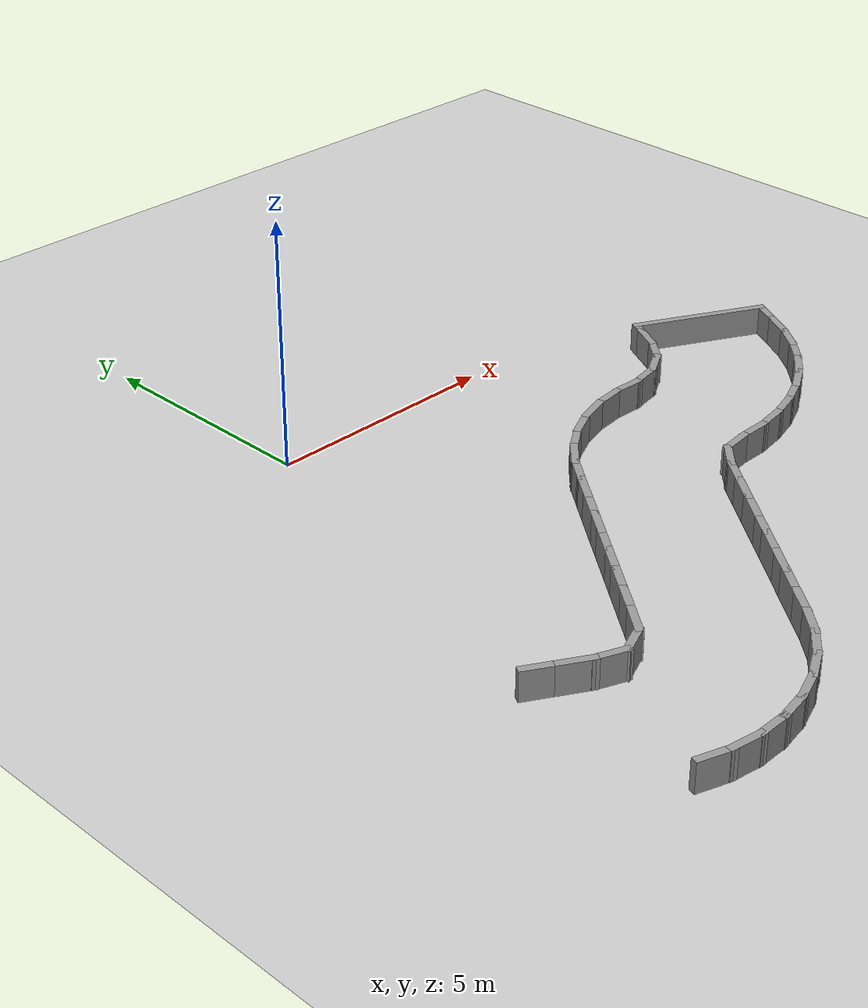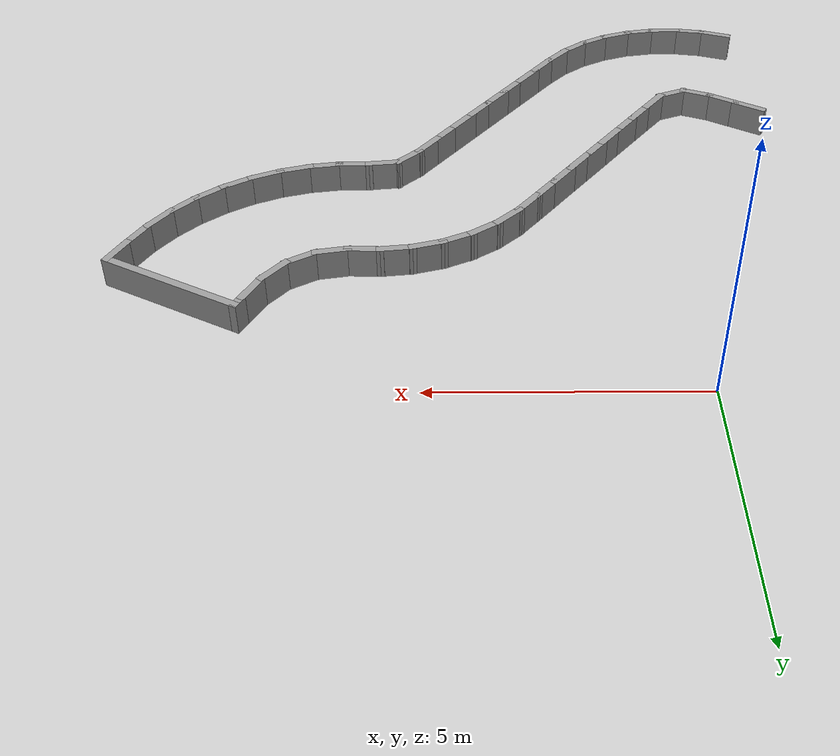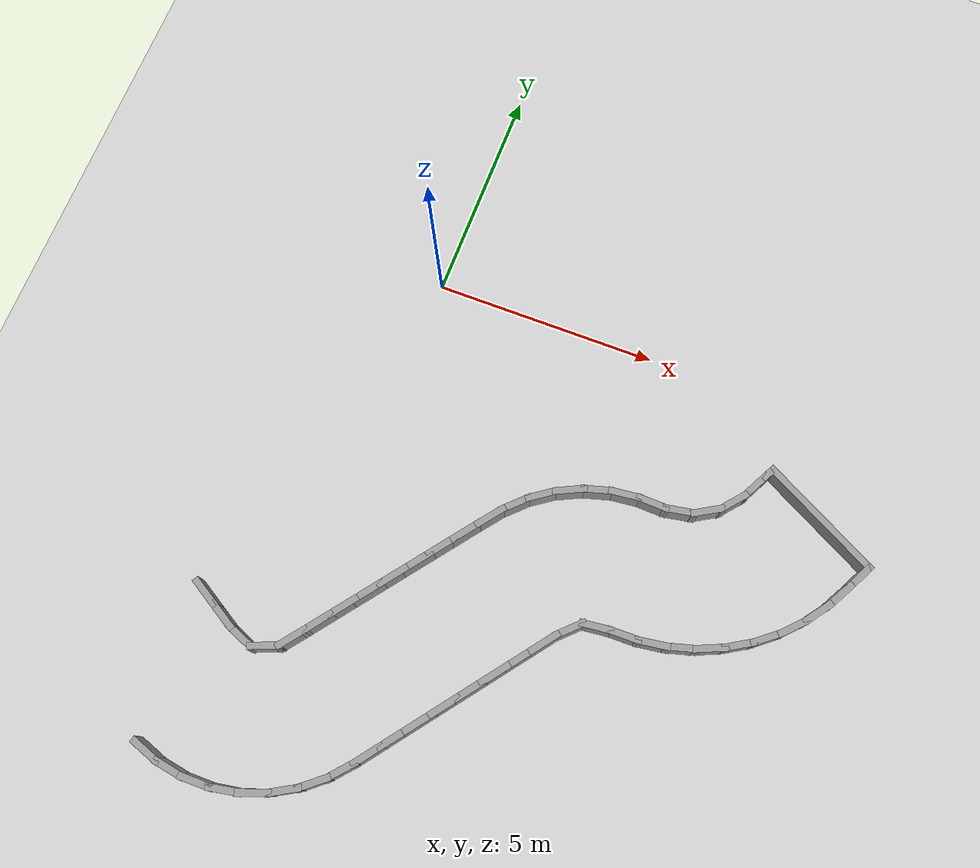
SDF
<sdf version="1.7">
 <world name="default">
  <model name="ground_plane">
   <static>1</static>
   <link name="link">
    <collision name="collision">
     <geometry><plane><normal>0 0 1</normal><size>100 100</size></plane></geometry>
     <surface><friction><ode><mu>100</mu><mu2>50</mu2></ode></friction></surface>
    </collision>
    <visual name="visual">
     <cast_shadows>0</cast_shadows>
     <geometry><plane><normal>0 0 1</normal><size>100 100</size></plane></geometry>
     <material>
      <script><uri>file://media/materials/scripts/gazebo.material</uri><name>Gazebo/Grey</name></script>
     </material>
    </visual>
   </link>
  </model>
  <model name="rand_turn_05">
   <link name="Wall_25">
    <collision name="Wall_25_Collision">
     <geometry><box><size>0.7500 0.1500 0.6000</size></box></geometry>
     <pose>0 0 0.3000 0 -0 0</pose>
    </collision>
    <visual name="Wall_25_Visual">
     <pose>0 0 0.3000 0 -0 0</pose>
     <geometry><box><size>0.7500 0.1500 0.6000</size></box></geometry>
     <material>
      <script><uri>file://media/materials/scripts/gazebo.material</uri><name>Gazebo/Grey</name></script>
      <ambient>1 1 1 1</ambient>
     </material>
    </visual>
    <pose>-1.9916 -8.2777 0 0 -0 -0.53224</pose>
   </link>
   <link name="Wall_26">
    <collision name="Wall_26_Collision">
     <geometry><box><size>0.7500 0.1500 0.6000</size></box></geometry>
     <pose>0 0 0.3000 0 -0 0</pose>
    </collision>
    <visual name="Wall_26_Visual">
     <pose>0 0 0.3000 0 -0 0</pose>
     <geometry><box><size>0.7500 0.1500 0.6000</size></box></geometry>
     <material>
      <script><uri>file://media/materials/scripts/gazebo.material</uri><name>Gazebo/Grey</name></script>
      <ambient>1 1 1 1</ambient>
     </material>
    </visual>
    <pose>-1.4746 -8.5822 0 0 -0 -0.53224</pose>
   </link>
   <link name="Wall_27">
    <collision name="Wall_27_Collision">
     <geometry><box><size>0.7416 0.1500 0.6000</size></box></geometry>
     <pose>0 0 0.3000 0 -0 0</pose>
    </collision>
    <visual name="Wall_27_Visual">
     <pose>0 0 0.3000 0 -0 0</pose>
     <geometry><box><size>0.7416 0.1500 0.6000</size></box></geometry>
     <material>
      <script><uri>file://media/materials/scripts/gazebo.material</uri><name>Gazebo/Grey</name></script>
      <ambient>1 1 1 1</ambient>
     </material>
    </visual>
    <pose>-0.9412 -8.8438 0 0 -0 -0.37850</pose>
   </link>
   <link name="Wall_28">
    <collision name="Wall_28_Collision">
     <geometry><box><size>0.7329 0.1500 0.6000</size></box></geometry>
     <pose>0 0 0.3000 0 -0 0</pose>
    </collision>
    <visual name="Wall_28_Visual">
     <pose>0 0 0.3000 0 -0 0</pose>
     <geometry><box><size>0.7329 0.1500 0.6000</size></box></geometry>
     <material>
      <script><uri>file://media/materials/scripts/gazebo.material</uri><name>Gazebo/Grey</name></script>
      <ambient>1 1 1 1</ambient>
     </material>
    </visual>
    <pose>-0.3967 -8.8427 0 0 -0 0.38835</pose>
   </link>
   <link name="Wall_29">
    <collision name="Wall_29_Collision">
     <geometry><box><size>0.7498 0.1500 0.6000</size></box></geometry>
     <pose>0 0 0.3000 0 -0 0</pose>
    </collision>
    <visual name="Wall_29_Visual">
     <pose>0 0 0.3000 0 -0 0</pose>
     <geometry><box><size>0.7498 0.1500 0.6000</size></box></geometry>
     <material>
      <script><uri>file://media/materials/scripts/gazebo.material</uri><name>Gazebo/Grey</name></script>
      <ambient>1 1 1 1</ambient>
     </material>
    </visual>
    <pose>0.0571 -8.4955 0 0 -0 0.91026</pose>
   </link>
   <link name="Wall_30">
    <collision name="Wall_30_Collision">
     <geometry><box><size>0.7500 0.1500 0.6000</size></box></geometry>
     <pose>0 0 0.3000 0 -0 0</pose>
    </collision>
    <visual name="Wall_30_Visual">
     <pose>0 0 0.3000 0 -0 0</pose>
     <geometry><box><size>0.7500 0.1500 0.6000</size></box></geometry>
     <material>
      <script><uri>file://media/materials/scripts/gazebo.material</uri><name>Gazebo/Grey</name></script>
      <ambient>1 1 1 1</ambient>
     </material>
    </visual>
    <pose>0.4232 -8.0203 0 0 -0 0.91858</pose>
   </link>
   <link name="Wall_31">
    <collision name="Wall_31_Collision">
     <geometry><box><size>0.7500 0.1500 0.6000</size></box></geometry>
     <pose>0 0 0.3000 0 -0 0</pose>
    </collision>
    <visual name="Wall_31_Visual">
     <pose>0 0 0.3000 0 -0 0</pose>
     <geometry><box><size>0.7500 0.1500 0.6000</size></box></geometry>
     <material>
      <script><uri>file://media/materials/scripts/gazebo.material</uri><name>Gazebo/Grey</name></script>
      <ambient>1 1 1 1</ambient>
     </material>
    </visual>
    <pose>0.7873 -7.5434 0 0 -0 0.91858</pose>
   </link>
   <link name="Wall_32">
    <collision name="Wall_32_Collision">
     <geometry><box><size>0.7500 0.1500 0.6000</size></box></geometry>
     <pose>0 0 0.3000 0 -0 0</pose>
    </collision>
    <visual name="Wall_32_Visual">
     <pose>0 0 0.3000 0 -0 0</pose>
     <geometry><box><size>0.7500 0.1500 0.6000</size></box></geometry>
     <material>
      <script><uri>file://media/materials/scripts/gazebo.material</uri><name>Gazebo/Grey</name></script>
      <ambient>1 1 1 1</ambient>
     </material>
    </visual>
    <pose>1.1515 -7.0666 0 0 -0 0.91858</pose>
   </link>
   <link name="Wall_33">
    <collision name="Wall_33_Collision">
     <geometry><box><size>0.7500 0.1500 0.6000</size></box></geometry>
     <pose>0 0 0.3000 0 -0 0</pose>
    </collision>
    <visual name="Wall_33_Visual">
     <pose>0 0 0.3000 0 -0 0</pose>
     <geometry><box><size>0.7500 0.1500 0.6000</size></box></geometry>
     <material>
      <script><uri>file://media/materials/scripts/gazebo.material</uri><name>Gazebo/Grey</name></script>
      <ambient>1 1 1 1</ambient>
     </material>
    </visual>
    <pose>1.5157 -6.5897 0 0 -0 0.91858</pose>
   </link>
   <link name="Wall_34">
    <collision name="Wall_34_Collision">
     <geometry><box><size>0.7500 0.1500 0.6000</size></box></geometry>
     <pose>0 0 0.3000 0 -0 0</pose>
    </collision>
    <visual name="Wall_34_Visual">
     <pose>0 0 0.3000 0 -0 0</pose>
     <geometry><box><size>0.7500 0.1500 0.6000</size></box></geometry>
     <material>
      <script><uri>file://media/materials/scripts/gazebo.material</uri><name>Gazebo/Grey</name></script>
      <ambient>1 1 1 1</ambient>
     </material>
    </visual>
    <pose>1.8799 -6.1129 0 0 -0 0.91858</pose>
   </link>
   <link name="Wall_35">
    <collision name="Wall_35_Collision">
     <geometry><box><size>0.7500 0.1500 0.6000</size></box></geometry>
     <pose>0 0 0.3000 0 -0 0</pose>
    </collision>
    <visual name="Wall_35_Visual">
     <pose>0 0 0.3000 0 -0 0</pose>
     <geometry><box><size>0.7500 0.1500 0.6000</size></box></geometry>
     <material>
      <script><uri>file://media/materials/scripts/gazebo.material</uri><name>Gazebo/Grey</name></script>
      <ambient>1 1 1 1</ambient>
     </material>
    </visual>
    <pose>2.2440 -5.6360 0 0 -0 0.91858</pose>
   </link>
   <link name="Wall_36">
    <collision name="Wall_36_Collision">
     <geometry><box><size>0.7500 0.1500 0.6000</size></box></geometry>
     <pose>0 0 0.3000 0 -0 0</pose>
    </collision>
    <visual name="Wall_36_Visual">
     <pose>0 0 0.3000 0 -0 0</pose>
     <geometry><box><size>0.7500 0.1500 0.6000</size></box></geometry>
     <material>
      <script><uri>file://media/materials/scripts/gazebo.material</uri><name>Gazebo/Grey</name></script>
      <ambient>1 1 1 1</ambient>
     </material>
    </visual>
    <pose>2.6082 -5.1592 0 0 -0 0.91858</pose>
   </link>
   <link name="Wall_37">
    <collision name="Wall_37_Collision">
     <geometry><box><size>0.7499 0.1500 0.6000</size></box></geometry>
     <pose>0 0 0.3000 0 -0 0</pose>
    </collision>
    <visual name="Wall_37_Visual">
     <pose>0 0 0.3000 0 -0 0</pose>
     <geometry><box><size>0.7499 0.1500 0.6000</size></box></geometry>
     <material>
      <script><uri>file://media/materials/scripts/gazebo.material</uri><name>Gazebo/Grey</name></script>
      <ambient>1 1 1 1</ambient>
     </material>
    </visual>
    <pose>2.9754 -4.6848 0 0 -0 0.90558</pose>
   </link>
   <link name="Wall_38">
    <collision name="Wall_38_Collision">
     <geometry><box><size>0.7493 0.1500 0.6000</size></box></geometry>
     <pose>0 0 0.3000 0 -0 0</pose>
    </collision>
    <visual name="Wall_38_Visual">
     <pose>0 0 0.3000 0 -0 0</pose>
     <geometry><box><size>0.7493 0.1500 0.6000</size></box></geometry>
     <material>
      <script><uri>file://media/materials/scripts/gazebo.material</uri><name>Gazebo/Grey</name></script>
      <ambient>1 1 1 1</ambient>
     </material>
    </visual>
    <pose>3.3745 -4.2390 0 0 -0 0.77561</pose>
   </link>
   <link name="Wall_39">
    <collision name="Wall_39_Collision">
     <geometry><box><size>0.7493 0.1500 0.6000</size></box></geometry>
     <pose>0 0 0.3000 0 -0 0</pose>
    </collision>
    <visual name="Wall_39_Visual">
     <pose>0 0 0.3000 0 -0 0</pose>
     <geometry><box><size>0.7493 0.1500 0.6000</size></box></geometry>
     <material>
      <script><uri>file://media/materials/scripts/gazebo.material</uri><name>Gazebo/Grey</name></script>
      <ambient>1 1 1 1</ambient>
     </material>
    </visual>
    <pose>3.8343 -3.8580 0 0 -0 0.60832</pose>
   </link>
   <link name="Wall_40">
    <collision name="Wall_40_Collision">
     <geometry><box><size>0.7492 0.1500 0.6000</size></box></geometry>
     <pose>0 0 0.3000 0 -0 0</pose>
    </collision>
    <visual name="Wall_40_Visual">
     <pose>0 0 0.3000 0 -0 0</pose>
     <geometry><box><size>0.7492 0.1500 0.6000</size></box></geometry>
     <material>
      <script><uri>file://media/materials/scripts/gazebo.material</uri><name>Gazebo/Grey</name></script>
      <ambient>1 1 1 1</ambient>
     </material>
    </visual>
    <pose>4.3507 -3.5579 0 0 -0 0.44445</pose>
   </link>
   <link name="Wall_41">
    <collision name="Wall_41_Collision">
     <geometry><box><size>0.7493 0.1500 0.6000</size></box></geometry>
     <pose>0 0 0.3000 0 -0 0</pose>
    </collision>
    <visual name="Wall_41_Visual">
     <pose>0 0 0.3000 0 -0 0</pose>
     <geometry><box><size>0.7493 0.1500 0.6000</size></box></geometry>
     <material>
      <script><uri>file://media/materials/scripts/gazebo.material</uri><name>Gazebo/Grey</name></script>
      <ambient>1 1 1 1</ambient>
     </material>
    </visual>
    <pose>4.9091 -3.3460 0 0 -0 0.28096</pose>
   </link>
   <link name="Wall_42">
    <collision name="Wall_42_Collision">
     <geometry><box><size>0.7493 0.1500 0.6000</size></box></geometry>
     <pose>0 0 0.3000 0 -0 0</pose>
    </collision>
    <visual name="Wall_42_Visual">
     <pose>0 0 0.3000 0 -0 0</pose>
     <geometry><box><size>0.7493 0.1500 0.6000</size></box></geometry>
     <material>
      <script><uri>file://media/materials/scripts/gazebo.material</uri><name>Gazebo/Grey</name></script>
      <ambient>1 1 1 1</ambient>
     </material>
    </visual>
    <pose>5.4948 -3.2290 0 0 -0 0.11343</pose>
   </link>
   <link name="Wall_43">
    <collision name="Wall_43_Collision">
     <geometry><box><size>0.7496 0.1500 0.6000</size></box></geometry>
     <pose>0 0 0.3000 0 -0 0</pose>
    </collision>
    <visual name="Wall_43_Visual">
     <pose>0 0 0.3000 0 -0 0</pose>
     <geometry><box><size>0.7496 0.1500 0.6000</size></box></geometry>
     <material>
      <script><uri>file://media/materials/scripts/gazebo.material</uri><name>Gazebo/Grey</name></script>
      <ambient>1 1 1 1</ambient>
     </material>
    </visual>
    <pose>6.0922 -3.2042 0 0 -0 -0.03039</pose>
   </link>
   <link name="Wall_44">
    <collision name="Wall_44_Collision">
     <geometry><box><size>0.7470 0.1500 0.6000</size></box></geometry>
     <pose>0 0 0.3000 0 -0 0</pose>
    </collision>
    <visual name="Wall_44_Visual">
     <pose>0 0 0.3000 0 -0 0</pose>
     <geometry><box><size>0.7470 0.1500 0.6000</size></box></geometry>
     <material>
      <script><uri>file://media/materials/scripts/gazebo.material</uri><name>Gazebo/Grey</name></script>
      <ambient>1 1 1 1</ambient>
     </material>
    </visual>
    <pose>6.6855 -3.1601 0 0 -0 0.17923</pose>
   </link>
   <link name="Wall_45">
    <collision name="Wall_45_Collision">
     <geometry><box><size>0.7470 0.1500 0.6000</size></box></geometry>
     <pose>0 0 0.3000 0 -0 0</pose>
    </collision>
    <visual name="Wall_45_Visual">
     <pose>0 0 0.3000 0 -0 0</pose>
     <geometry><box><size>0.7470 0.1500 0.6000</size></box></geometry>
     <material>
      <script><uri>file://media/materials/scripts/gazebo.material</uri><name>Gazebo/Grey</name></script>
      <ambient>1 1 1 1</ambient>
     </material>
    </visual>
    <pose>7.2375 -2.9572 0 0 -0 0.52534</pose>
   </link>
   <link name="Wall_46">
    <collision name="Wall_46_Collision">
     <geometry><box><size>0.7470 0.1500 0.6000</size></box></geometry>
     <pose>0 0 0.3000 0 -0 0</pose>
    </collision>
    <visual name="Wall_46_Visual">
     <pose>0 0 0.3000 0 -0 0</pose>
     <geometry><box><size>0.7470 0.1500 0.6000</size></box></geometry>
     <material>
      <script><uri>file://media/materials/scripts/gazebo.material</uri><name>Gazebo/Grey</name></script>
      <ambient>1 1 1 1</ambient>
     </material>
    </visual>
    <pose>7.6879 -2.5790 0 0 -0 0.87145</pose>
   </link>
   <link name="Wall_47">
    <collision name="Wall_47_Collision">
     <geometry><box><size>0.7500 0.1500 0.6000</size></box></geometry>
     <pose>0 0 0.3000 0 -0 0</pose>
    </collision>
    <visual name="Wall_47_Visual">
     <pose>0 0 0.3000 0 -0 0</pose>
     <geometry><box><size>0.7500 0.1500 0.6000</size></box></geometry>
     <material>
      <script><uri>file://media/materials/scripts/gazebo.material</uri><name>Gazebo/Grey</name></script>
      <ambient>1 1 1 1</ambient>
     </material>
    </visual>
    <pose>8.0192 -2.0848 0 0 -0 1.08844</pose>
   </link>
   <link name="Wall_48">
    <collision name="Wall_48_Collision">
     <geometry><box><size>0.3803 0.1500 0.6000</size></box></geometry>
     <pose>0 0 0.3000 0 -0 0</pose>
    </collision>
    <visual name="Wall_48_Visual">
     <pose>0 0 0.3000 0 -0 0</pose>
     <geometry><box><size>0.3803 0.1500 0.6000</size></box></geometry>
     <material>
      <script><uri>file://media/materials/scripts/gazebo.material</uri><name>Gazebo/Grey</name></script>
      <ambient>1 1 1 1</ambient>
     </material>
    </visual>
    <pose>8.2115 -1.7169 0 0 -0 1.09093</pose>
   </link>
   <link name="Wall_75">
    <collision name="Wall_75_Collision">
     <geometry><box><size>0.7492 0.1500 0.6000</size></box></geometry>
     <pose>0 0 0.3000 0 -0 0</pose>
    </collision>
    <visual name="Wall_75_Visual">
     <pose>0 0 0.3000 0 -0 0</pose>
     <geometry><box><size>0.7492 0.1500 0.6000</size></box></geometry>
     <material>
      <script><uri>file://media/materials/scripts/gazebo.material</uri><name>Gazebo/Grey</name></script>
      <ambient>1 1 1 1</ambient>
     </material>
    </visual>
    <pose>-1.7825 -11.5918 0 0 -0 -0.32610</pose>
   </link>
   <link name="Wall_76">
    <collision name="Wall_76_Collision">
     <geometry><box><size>0.7493 0.1500 0.6000</size></box></geometry>
     <pose>0 0 0.3000 0 -0 0</pose>
    </collision>
    <visual name="Wall_76_Visual">
     <pose>0 0 0.3000 0 -0 0</pose>
     <geometry><box><size>0.7493 0.1500 0.6000</size></box></geometry>
     <material>
      <script><uri>file://media/materials/scripts/gazebo.material</uri><name>Gazebo/Grey</name></script>
      <ambient>1 1 1 1</ambient>
     </material>
    </visual>
    <pose>-1.2028 -11.7348 0 0 -0 -0.15751</pose>
   </link>
   <link name="Wall_77">
    <collision name="Wall_77_Collision">
     <geometry><box><size>0.7492 0.1500 0.6000</size></box></geometry>
     <pose>0 0 0.3000 0 -0 0</pose>
    </collision>
    <visual name="Wall_77_Visual">
     <pose>0 0 0.3000 0 -0 0</pose>
     <geometry><box><size>0.7492 0.1500 0.6000</size></box></geometry>
     <material>
      <script><uri>file://media/materials/scripts/gazebo.material</uri><name>Gazebo/Grey</name></script>
      <ambient>1 1 1 1</ambient>
     </material>
    </visual>
    <pose>-0.6073 -11.7782 0 0 -0 0.01196</pose>
   </link>
   <link name="Wall_78">
    <collision name="Wall_78_Collision">
     <geometry><box><size>0.7492 0.1500 0.6000</size></box></geometry>
     <pose>0 0 0.3000 0 -0 0</pose>
    </collision>
    <visual name="Wall_78_Visual">
     <pose>0 0 0.3000 0 -0 0</pose>
     <geometry><box><size>0.7492 0.1500 0.6000</size></box></geometry>
     <material>
      <script><uri>file://media/materials/scripts/gazebo.material</uri><name>Gazebo/Grey</name></script>
      <ambient>1 1 1 1</ambient>
     </material>
    </visual>
    <pose>-0.0128 -11.7214 0 0 -0 0.17847</pose>
   </link>
   <link name="Wall_79">
    <collision name="Wall_79_Collision">
     <geometry><box><size>0.7493 0.1500 0.6000</size></box></geometry>
     <pose>0 0 0.3000 0 -0 0</pose>
    </collision>
    <visual name="Wall_79_Visual">
     <pose>0 0 0.3000 0 -0 0</pose>
     <geometry><box><size>0.7493 0.1500 0.6000</size></box></geometry>
     <material>
      <script><uri>file://media/materials/scripts/gazebo.material</uri><name>Gazebo/Grey</name></script>
      <ambient>1 1 1 1</ambient>
     </material>
    </visual>
    <pose>0.5636 -11.5657 0 0 -0 0.34928</pose>
   </link>
   <link name="Wall_80">
    <collision name="Wall_80_Collision">
     <geometry><box><size>0.7492 0.1500 0.6000</size></box></geometry>
     <pose>0 0 0.3000 0 -0 0</pose>
    </collision>
    <visual name="Wall_80_Visual">
     <pose>0 0 0.3000 0 -0 0</pose>
     <geometry><box><size>0.7492 0.1500 0.6000</size></box></geometry>
     <material>
      <script><uri>file://media/materials/scripts/gazebo.material</uri><name>Gazebo/Grey</name></script>
      <ambient>1 1 1 1</ambient>
     </material>
    </visual>
    <pose>1.1056 -11.3152 0 0 -0 0.51654</pose>
   </link>
   <link name="Wall_81">
    <collision name="Wall_81_Collision">
     <geometry><box><size>0.7493 0.1500 0.6000</size></box></geometry>
     <pose>0 0 0.3000 0 -0 0</pose>
    </collision>
    <visual name="Wall_81_Visual">
     <pose>0 0 0.3000 0 -0 0</pose>
     <geometry><box><size>0.7493 0.1500 0.6000</size></box></geometry>
     <material>
      <script><uri>file://media/materials/scripts/gazebo.material</uri><name>Gazebo/Grey</name></script>
      <ambient>1 1 1 1</ambient>
     </material>
    </visual>
    <pose>1.5983 -10.9778 0 0 -0 0.68451</pose>
   </link>
   <link name="Wall_82">
    <collision name="Wall_82_Collision">
     <geometry><box><size>0.7493 0.1500 0.6000</size></box></geometry>
     <pose>0 0 0.3000 0 -0 0</pose>
    </collision>
    <visual name="Wall_82_Visual">
     <pose>0 0 0.3000 0 -0 0</pose>
     <geometry><box><size>0.7493 0.1500 0.6000</size></box></geometry>
     <material>
      <script><uri>file://media/materials/scripts/gazebo.material</uri><name>Gazebo/Grey</name></script>
      <ambient>1 1 1 1</ambient>
     </material>
    </visual>
    <pose>2.0277 -10.5628 0 0 -0 0.85195</pose>
   </link>
   <link name="Wall_83">
    <collision name="Wall_83_Collision">
     <geometry><box><size>0.7500 0.1500 0.6000</size></box></geometry>
     <pose>0 0 0.3000 0 -0 0</pose>
    </collision>
    <visual name="Wall_83_Visual">
     <pose>0 0 0.3000 0 -0 0</pose>
     <geometry><box><size>0.7500 0.1500 0.6000</size></box></geometry>
     <material>
      <script><uri>file://media/materials/scripts/gazebo.material</uri><name>Gazebo/Grey</name></script>
      <ambient>1 1 1 1</ambient>
     </material>
    </visual>
    <pose>2.4072 -10.0988 0 0 -0 0.91854</pose>
   </link>
   <link name="Wall_84">
    <collision name="Wall_84_Collision">
     <geometry><box><size>0.7500 0.1500 0.6000</size></box></geometry>
     <pose>0 0 0.3000 0 -0 0</pose>
    </collision>
    <visual name="Wall_84_Visual">
     <pose>0 0 0.3000 0 -0 0</pose>
     <geometry><box><size>0.7500 0.1500 0.6000</size></box></geometry>
     <material>
      <script><uri>file://media/materials/scripts/gazebo.material</uri><name>Gazebo/Grey</name></script>
      <ambient>1 1 1 1</ambient>
     </material>
    </visual>
    <pose>2.7713 -9.6220 0 0 -0 0.91858</pose>
   </link>
   <link name="Wall_85">
    <collision name="Wall_85_Collision">
     <geometry><box><size>0.7500 0.1500 0.6000</size></box></geometry>
     <pose>0 0 0.3000 0 -0 0</pose>
    </collision>
    <visual name="Wall_85_Visual">
     <pose>0 0 0.3000 0 -0 0</pose>
     <geometry><box><size>0.7500 0.1500 0.6000</size></box></geometry>
     <material>
      <script><uri>file://media/materials/scripts/gazebo.material</uri><name>Gazebo/Grey</name></script>
      <ambient>1 1 1 1</ambient>
     </material>
    </visual>
    <pose>3.1355 -9.1452 0 0 -0 0.91858</pose>
   </link>
   <link name="Wall_86">
    <collision name="Wall_86_Collision">
     <geometry><box><size>0.7500 0.1500 0.6000</size></box></geometry>
     <pose>0 0 0.3000 0 -0 0</pose>
    </collision>
    <visual name="Wall_86_Visual">
     <pose>0 0 0.3000 0 -0 0</pose>
     <geometry><box><size>0.7500 0.1500 0.6000</size></box></geometry>
     <material>
      <script><uri>file://media/materials/scripts/gazebo.material</uri><name>Gazebo/Grey</name></script>
      <ambient>1 1 1 1</ambient>
     </material>
    </visual>
    <pose>3.4997 -8.6683 0 0 -0 0.91858</pose>
   </link>
   <link name="Wall_87">
    <collision name="Wall_87_Collision">
     <geometry><box><size>0.7500 0.1500 0.6000</size></box></geometry>
     <pose>0 0 0.3000 0 -0 0</pose>
    </collision>
    <visual name="Wall_87_Visual">
     <pose>0 0 0.3000 0 -0 0</pose>
     <geometry><box><size>0.7500 0.1500 0.6000</size></box></geometry>
     <material>
      <script><uri>file://media/materials/scripts/gazebo.material</uri><name>Gazebo/Grey</name></script>
      <ambient>1 1 1 1</ambient>
     </material>
    </visual>
    <pose>3.8639 -8.1915 0 0 -0 0.91858</pose>
   </link>
   <link name="Wall_88">
    <collision name="Wall_88_Collision">
     <geometry><box><size>0.7500 0.1500 0.6000</size></box></geometry>
     <pose>0 0 0.3000 0 -0 0</pose>
    </collision>
    <visual name="Wall_88_Visual">
     <pose>0 0 0.3000 0 -0 0</pose>
     <geometry><box><size>0.7500 0.1500 0.6000</size></box></geometry>
     <material>
      <script><uri>file://media/materials/scripts/gazebo.material</uri><name>Gazebo/Grey</name></script>
      <ambient>1 1 1 1</ambient>
     </material>
    </visual>
    <pose>4.2280 -7.7146 0 0 -0 0.91858</pose>
   </link>
   <link name="Wall_89">
    <collision name="Wall_89_Collision">
     <geometry><box><size>0.7500 0.1500 0.6000</size></box></geometry>
     <pose>0 0 0.3000 0 -0 0</pose>
    </collision>
    <visual name="Wall_89_Visual">
     <pose>0 0 0.3000 0 -0 0</pose>
     <geometry><box><size>0.7500 0.1500 0.6000</size></box></geometry>
     <material>
      <script><uri>file://media/materials/scripts/gazebo.material</uri><name>Gazebo/Grey</name></script>
      <ambient>1 1 1 1</ambient>
     </material>
    </visual>
    <pose>4.5922 -7.2378 0 0 -0 0.91858</pose>
   </link>
   <link name="Wall_90">
    <collision name="Wall_90_Collision">
     <geometry><box><size>0.7500 0.1500 0.6000</size></box></geometry>
     <pose>0 0 0.3000 0 -0 0</pose>
    </collision>
    <visual name="Wall_90_Visual">
     <pose>0 0 0.3000 0 -0 0</pose>
     <geometry><box><size>0.7500 0.1500 0.6000</size></box></geometry>
     <material>
      <script><uri>file://media/materials/scripts/gazebo.material</uri><name>Gazebo/Grey</name></script>
      <ambient>1 1 1 1</ambient>
     </material>
    </visual>
    <pose>4.9564 -6.7610 0 0 -0 0.91858</pose>
   </link>
   <link name="Wall_91">
    <collision name="Wall_91_Collision">
     <geometry><box><size>0.7426 0.1500 0.6000</size></box></geometry>
     <pose>0 0 0.3000 0 -0 0</pose>
    </collision>
    <visual name="Wall_91_Visual">
     <pose>0 0 0.3000 0 -0 0</pose>
     <geometry><box><size>0.7426 0.1500 0.6000</size></box></geometry>
     <material>
      <script><uri>file://media/materials/scripts/gazebo.material</uri><name>Gazebo/Grey</name></script>
      <ambient>1 1 1 1</ambient>
     </material>
    </visual>
    <pose>5.3510 -6.3161 0 0 -0 0.77065</pose>
   </link>
   <link name="Wall_92">
    <collision name="Wall_92_Collision">
     <geometry><box><size>0.7411 0.1500 0.6000</size></box></geometry>
     <pose>0 0 0.3000 0 -0 0</pose>
    </collision>
    <visual name="Wall_92_Visual">
     <pose>0 0 0.3000 0 -0 0</pose>
     <geometry><box><size>0.7411 0.1500 0.6000</size></box></geometry>
     <material>
      <script><uri>file://media/materials/scripts/gazebo.material</uri><name>Gazebo/Grey</name></script>
      <ambient>1 1 1 1</ambient>
     </material>
    </visual>
    <pose>5.8574 -6.0776 0 0 -0 0.10882</pose>
   </link>
   <link name="Wall_93">
    <collision name="Wall_93_Collision">
     <geometry><box><size>0.7495 0.1500 0.6000</size></box></geometry>
     <pose>0 0 0.3000 0 -0 0</pose>
    </collision>
    <visual name="Wall_93_Visual">
     <pose>0 0 0.3000 0 -0 0</pose>
     <geometry><box><size>0.7495 0.1500 0.6000</size></box></geometry>
     <material>
      <script><uri>file://media/materials/scripts/gazebo.material</uri><name>Gazebo/Grey</name></script>
      <ambient>1 1 1 1</ambient>
     </material>
    </visual>
    <pose>6.4510 -6.0409 0 0 -0 0.01523</pose>
   </link>
   <link name="Wall_94">
    <collision name="Wall_94_Collision">
     <geometry><box><size>0.7495 0.1500 0.6000</size></box></geometry>
     <pose>0 0 0.3000 0 -0 0</pose>
    </collision>
    <visual name="Wall_94_Visual">
     <pose>0 0 0.3000 0 -0 0</pose>
     <geometry><box><size>0.7495 0.1500 0.6000</size></box></geometry>
     <material>
      <script><uri>file://media/materials/scripts/gazebo.material</uri><name>Gazebo/Grey</name></script>
      <ambient>1 1 1 1</ambient>
     </material>
    </visual>
    <pose>7.0473 -5.9927 0 0 -0 0.14633</pose>
   </link>
   <link name="Wall_95">
    <collision name="Wall_95_Collision">
     <geometry><box><size>0.7496 0.1500 0.6000</size></box></geometry>
     <pose>0 0 0.3000 0 -0 0</pose>
    </collision>
    <visual name="Wall_95_Visual">
     <pose>0 0 0.3000 0 -0 0</pose>
     <geometry><box><size>0.7496 0.1500 0.6000</size></box></geometry>
     <material>
      <script><uri>file://media/materials/scripts/gazebo.material</uri><name>Gazebo/Grey</name></script>
      <ambient>1 1 1 1</ambient>
     </material>
    </visual>
    <pose>7.6321 -5.8669 0 0 -0 0.27743</pose>
   </link>
   <link name="Wall_96">
    <collision name="Wall_96_Collision">
     <geometry><box><size>0.7496 0.1500 0.6000</size></box></geometry>
     <pose>0 0 0.3000 0 -0 0</pose>
    </collision>
    <visual name="Wall_96_Visual">
     <pose>0 0 0.3000 0 -0 0</pose>
     <geometry><box><size>0.7496 0.1500 0.6000</size></box></geometry>
     <material>
      <script><uri>file://media/materials/scripts/gazebo.material</uri><name>Gazebo/Grey</name></script>
      <ambient>1 1 1 1</ambient>
     </material>
    </visual>
    <pose>8.1955 -5.6655 0 0 -0 0.40907</pose>
   </link>
   <link name="Wall_97">
    <collision name="Wall_97_Collision">
     <geometry><box><size>0.7496 0.1500 0.6000</size></box></geometry>
     <pose>0 0 0.3000 0 -0 0</pose>
    </collision>
    <visual name="Wall_97_Visual">
     <pose>0 0 0.3000 0 -0 0</pose>
     <geometry><box><size>0.7496 0.1500 0.6000</size></box></geometry>
     <material>
      <script><uri>file://media/materials/scripts/gazebo.material</uri><name>Gazebo/Grey</name></script>
      <ambient>1 1 1 1</ambient>
     </material>
    </visual>
    <pose>8.7276 -5.3920 0 0 -0 0.54068</pose>
   </link>
   <link name="Wall_98">
    <collision name="Wall_98_Collision">
     <geometry><box><size>0.7495 0.1500 0.6000</size></box></geometry>
     <pose>0 0 0.3000 0 -0 0</pose>
    </collision>
    <visual name="Wall_98_Visual">
     <pose>0 0 0.3000 0 -0 0</pose>
     <geometry><box><size>0.7495 0.1500 0.6000</size></box></geometry>
     <material>
      <script><uri>file://media/materials/scripts/gazebo.material</uri><name>Gazebo/Grey</name></script>
      <ambient>1 1 1 1</ambient>
     </material>
    </visual>
    <pose>9.2192 -5.0511 0 0 -0 0.67177</pose>
   </link>
   <link name="Wall_99">
    <collision name="Wall_99_Collision">
     <geometry><box><size>0.7495 0.1500 0.6000</size></box></geometry>
     <pose>0 0 0.3000 0 -0 0</pose>
    </collision>
    <visual name="Wall_99_Visual">
     <pose>0 0 0.3000 0 -0 0</pose>
     <geometry><box><size>0.7495 0.1500 0.6000</size></box></geometry>
     <material>
      <script><uri>file://media/materials/scripts/gazebo.material</uri><name>Gazebo/Grey</name></script>
      <ambient>1 1 1 1</ambient>
     </material>
    </visual>
    <pose>9.6621 -4.6489 0 0 -0 0.80287</pose>
   </link>
   <link name="Wall_100">
    <collision name="Wall_100_Collision">
     <geometry><box><size>0.7495 0.1500 0.6000</size></box></geometry>
     <pose>0 0 0.3000 0 -0 0</pose>
    </collision>
    <visual name="Wall_100_Visual">
     <pose>0 0 0.3000 0 -0 0</pose>
     <geometry><box><size>0.7495 0.1500 0.6000</size></box></geometry>
     <material>
      <script><uri>file://media/materials/scripts/gazebo.material</uri><name>Gazebo/Grey</name></script>
      <ambient>1 1 1 1</ambient>
     </material>
    </visual>
    <pose>10.0486 -4.1923 0 0 -0 0.93397</pose>
   </link>
   <link name="Wall_101">
    <collision name="Wall_101_Collision">
     <geometry><box><size>0.7497 0.1500 0.6000</size></box></geometry>
     <pose>0 0 0.3000 0 -0 0</pose>
    </collision>
    <visual name="Wall_101_Visual">
     <pose>0 0 0.3000 0 -0 0</pose>
     <geometry><box><size>0.7497 0.1500 0.6000</size></box></geometry>
     <material>
      <script><uri>file://media/materials/scripts/gazebo.material</uri><name>Gazebo/Grey</name></script>
      <ambient>1 1 1 1</ambient>
     </material>
    </visual>
    <pose>10.3737 -3.6898 0 0 -0 1.05895</pose>
   </link>
   <link name="Wall_102">
    <collision name="Wall_102_Collision">
     <geometry><box><size>0.7173 0.1500 0.6000</size></box></geometry>
     <pose>0 0 0.3000 0 -0 0</pose>
    </collision>
    <visual name="Wall_102_Visual">
     <pose>0 0 0.3000 0 -0 0</pose>
     <geometry><box><size>0.7173 0.1500 0.6000</size></box></geometry>
     <material>
      <script><uri>file://media/materials/scripts/gazebo.material</uri><name>Gazebo/Grey</name></script>
      <ambient>1 1 1 1</ambient>
     </material>
    </visual>
    <pose>10.6515 -3.1768 0 0 -0 1.09093</pose>
   </link>
   <link name="Wall_104">
    <collision name="Wall_104_Collision">
     <geometry><box><size>2.9884 0.1500 0.6000</size></box></geometry>
     <pose>0 0 0.3000 0 -0 0</pose>
    </collision>
    <visual name="Wall_104_Visual">
     <pose>0 0 0.3000 0 -0 0</pose>
     <geometry><box><size>2.9884 0.1500 0.6000</size></box></geometry>
     <material>
      <script><uri>file://media/materials/scripts/gazebo.material</uri><name>Gazebo/Grey</name></script>
      <ambient>1 1 1 1</ambient>
     </material>
    </visual>
    <pose>9.5236 -2.2700 0 0 -0 -0.47986</pose>
   </link>
   <static>1</static>
  </model>
 </world>
</sdf>
